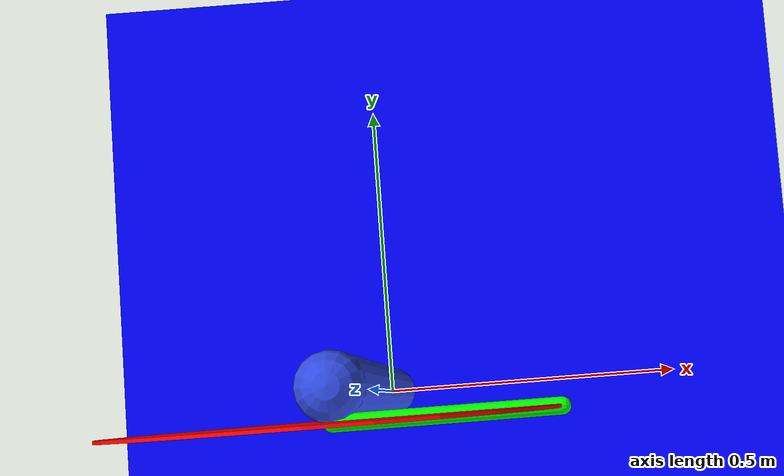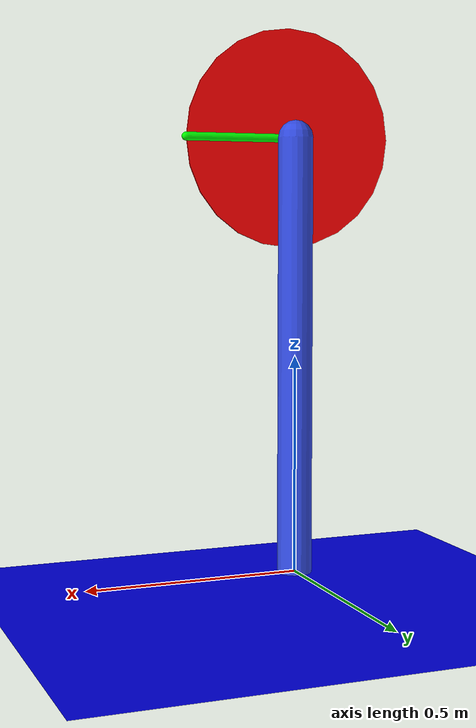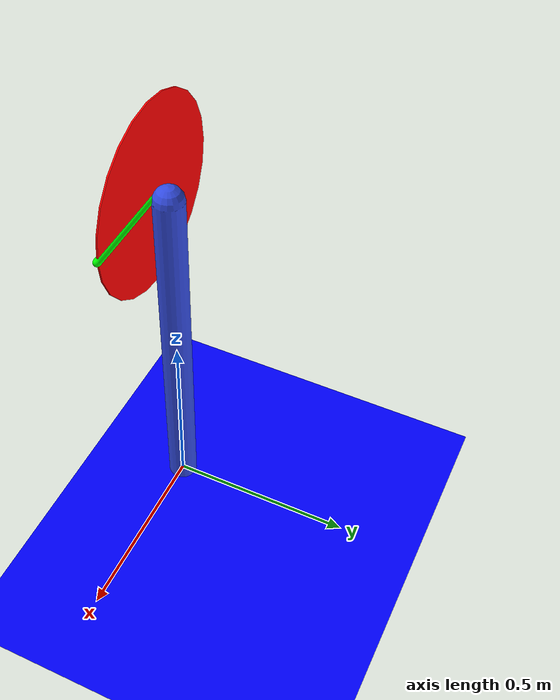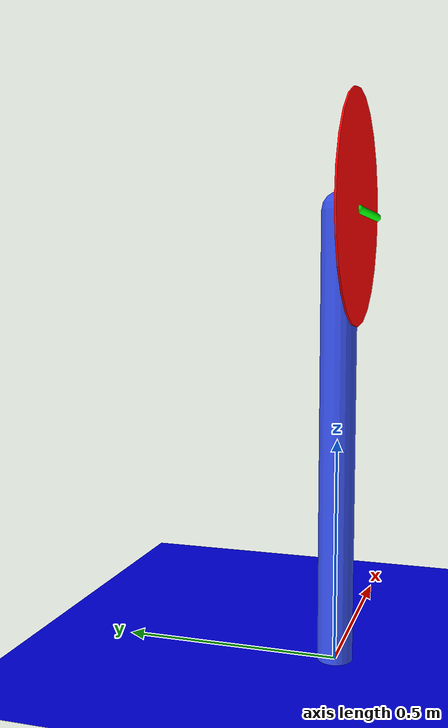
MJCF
<mujoco model="inverted_double_pendulum">

    <compiler angle="radian" inertiafromgeom="true"/>

    <option timestep="0.0001" gravity="0 0 -9.81" integrator="RK4"/>

    <default>
        <joint damping="0.001" frictionloss="0.0"/>
        <motor ctrllimited="true" ctrlrange="-10 10"/>
    </default>

    <worldbody>
        <body name="base" pos="0 0 0">
            <geom type="plane" size="1 1 0.01" rgba="0 0 1 1"/>

            <body name="pendulum" pos="0 0 0">

                <!-- Pendulum joint (theta) -->
                <joint name="theta"
                       type="hinge"
                       axis="0 1 0"
                       pos="0 0 0"/>

                <!-- Pendulum rod -->
                <geom name="rod"
                      type="capsule"
                      fromto="0 0 0 0 0 1"
                      size="0.04"
                      rgba="0.2 0.3 0.9 1"
                      mass="1"/>

                <!-- Reaction wheel body -->
                <body name="wheel" pos="0 -0.04 1">

                    <!-- Wheel joint (phi) -->
                    <joint name="phi"
                           type="hinge"
                           axis="0 1 0"/>

                    <!-- Reaction wheel disk -->
                    <geom name="wheel_geom"
                          type="cylinder"
                          size="0.25 0.002"
                          rgba="1 0 0 1"
                          euler="-1.57079 0 0"
                          mass="2"/>

                    <!-- Massless visual marker to show rotation -->
                    <geom name="wheel_marker"
                          type="capsule"
                          fromto="0 0 0  0.25 0 0"
                          size="0.01"
                          rgba="0 1 0 1"
                          density="0"/>
                </body>

            </body>
        </body>
    </worldbody>

    <!-- Actuation: wheel only -->
    <actuator>
        <motor name="wheel_motor"
               joint="phi"
               gear="1"/>
    </actuator>

    <!-- Sensors -->
    <sensor>
        <jointpos joint="theta"/>
        <jointvel joint="theta"/>
        <jointvel joint="phi"/>
    </sensor>

    <!-- Initial conditions -->
    <keyframe>
        <key name="small"
             qpos="0.05 0.0"
             qvel="0.0 0.0"/>

        <key name="medium"
             qpos="0.15 0.0"
             qvel="0.0 0.0"/>

        <key name="large"
             qpos="0.5 0.0"
             qvel="0.0 0.0"/>
    </keyframe>

</mujoco>
